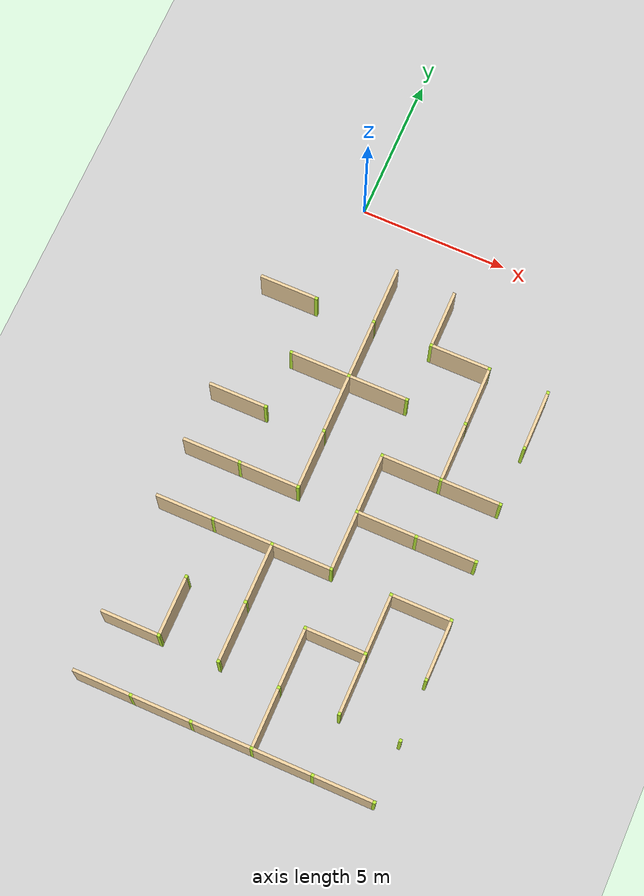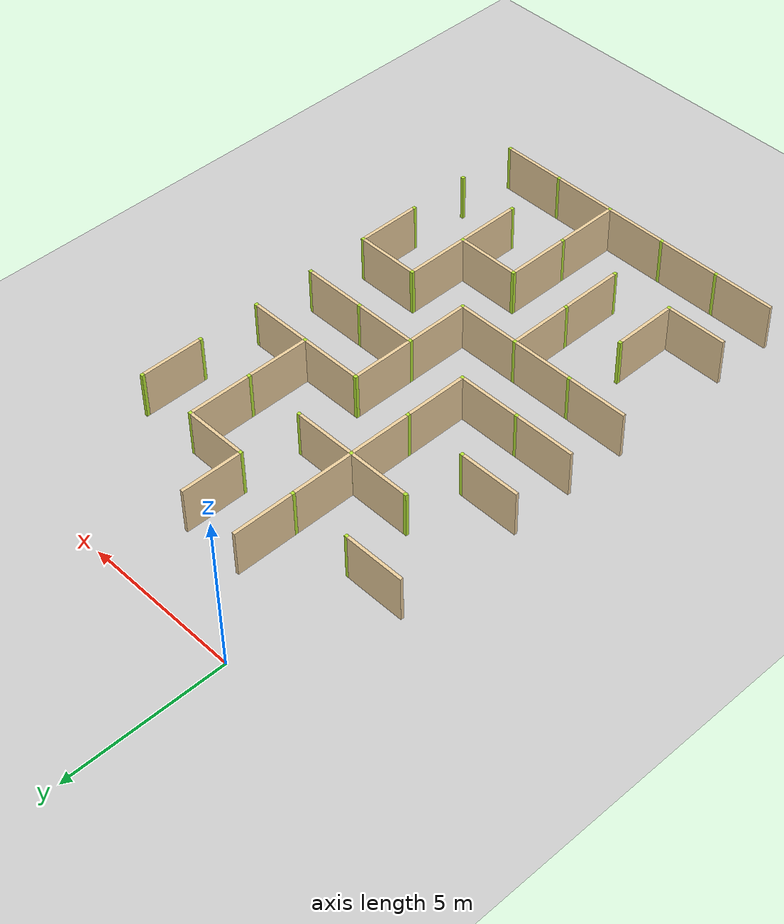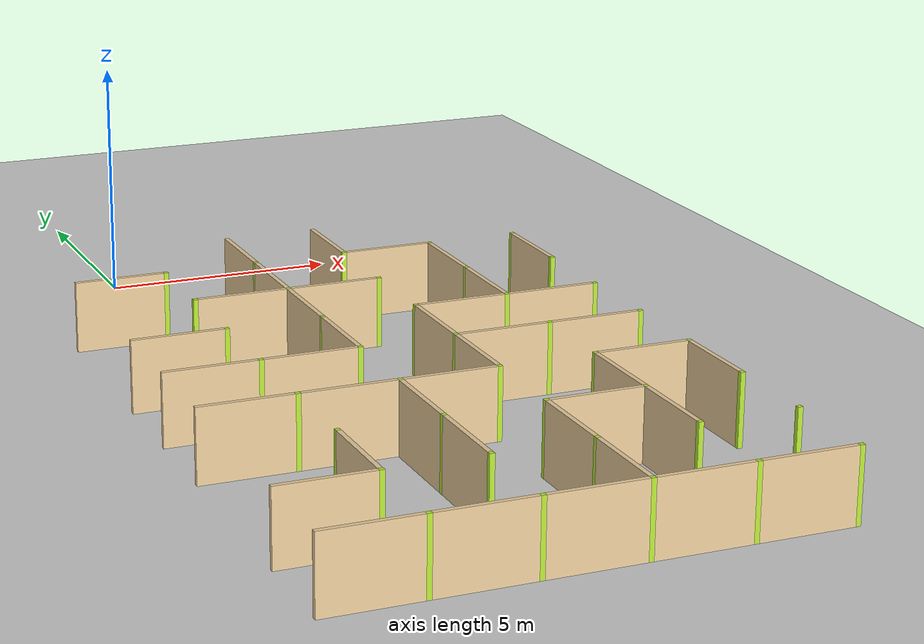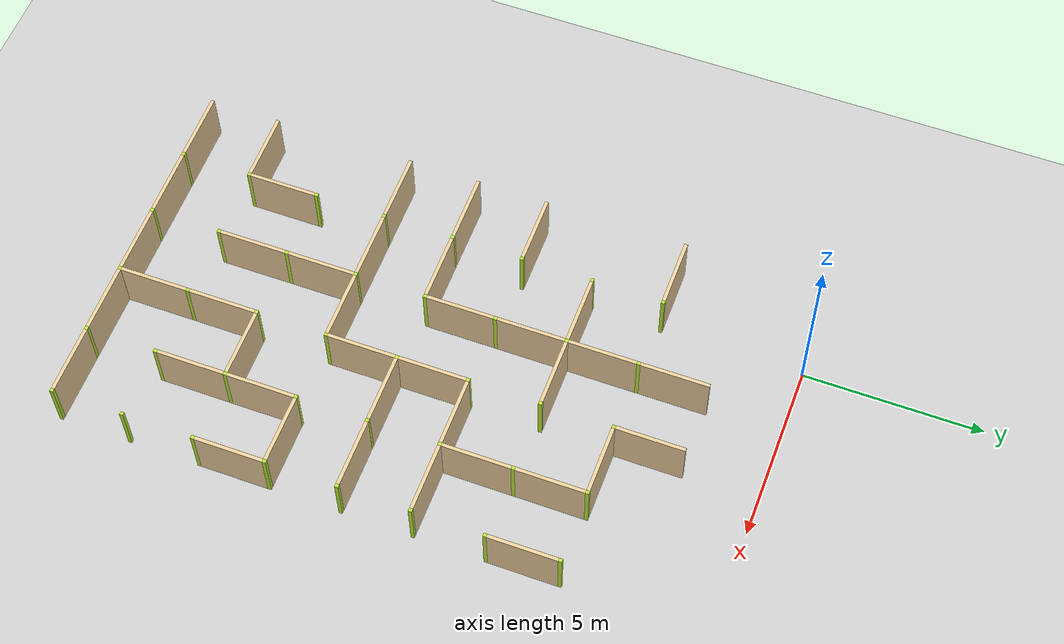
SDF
<sdf version="1.4">
 <world name="maze_world">
  <model name="ground">
   <static>true</static>
   <link name="ground_link">
    <collision name="collision1"><geometry><plane><normal>0 0 1</normal></plane></geometry></collision>
    <visual name="visual1"><geometry><plane><normal>0 0 1</normal><size>100 100</size></plane></geometry></visual>
   </link>
  </model>
  <model name="Untitled">
   <link name="Wall_11_11_v">
    <collision name="Wall_0_Collision">
     <geometry><box><size>1.9 0.1 1.5</size></box></geometry>
     <pose>0 0 0.75 0 -0 0</pose>
    </collision>
    <visual name="Wall_0_Visual">
     <pose>0 0 0.75 0 -0 0</pose>
     <geometry><box><size>1.9 0.1 1.5</size></box></geometry>
     <material>
      <script><uri>file://media/materials/scripts/gazebo.material</uri><name>Gazebo/Grey</name></script>
      <ambient>0.921569 0.807843 0.615686 1</ambient>
     </material>
     <meta><layer>0</layer></meta>
    </visual>
    <pose>2 -3.0 0 0 -0 1.5708</pose>
   </link>
   <link name="Wall_12_11_v">
    <collision name="Wall_0_Collision">
     <geometry><box><size>1.9 0.1 1.5</size></box></geometry>
     <pose>0 0 0.75 0 -0 0</pose>
    </collision>
    <visual name="Wall_0_Visual">
     <pose>0 0 0.75 0 -0 0</pose>
     <geometry><box><size>1.9 0.1 1.5</size></box></geometry>
     <material>
      <script><uri>file://media/materials/scripts/gazebo.material</uri><name>Gazebo/Grey</name></script>
      <ambient>0.921569 0.807843 0.615686 1</ambient>
     </material>
     <meta><layer>0</layer></meta>
    </visual>
    <pose>4 -3.0 0 0 -0 1.5708</pose>
   </link>
   <link name="Wall_9_12_h">
    <collision name="Wall_0_Collision">
     <geometry><box><size>1.9 0.1 1.5</size></box></geometry>
     <pose>0 0 0.75 0 -0 0</pose>
    </collision>
    <visual name="Wall_0_Visual">
     <pose>0 0 0.75 0 -0 0</pose>
     <geometry><box><size>1.9 0.1 1.5</size></box></geometry>
     <material>
      <script><uri>file://media/materials/scripts/gazebo.material</uri><name>Gazebo/Grey</name></script>
      <ambient>0.921569 0.807843 0.615686 1</ambient>
     </material>
     <meta><layer>0</layer></meta>
    </visual>
    <pose>-1.0 -4 0 0 -0 0</pose>
   </link>
   <link name="Joint_0_-4">
    <collision name="Wall_2_Collision">
     <geometry><box><size>0.1 0.1 1.5</size></box></geometry>
     <pose>0 0 0.75 0 -0 0</pose>
    </collision>
    <visual name="Wall_2_Visual">
     <pose>0 0 0.75 0 -0 0</pose>
     <geometry><box><size>0.1 0.1 1.5</size></box></geometry>
     <material>
      <script><uri>file://media/materials/scripts/gazebo.material</uri><name>Gazebo/Grey</name></script>
      <ambient>0.721569 0.907843 0.215686 1</ambient>
     </material>
     <meta><layer>0</layer></meta>
    </visual>
    <pose>0 -4 0 0 -0 0</pose>
   </link>
   <link name="Wall_11_12_v">
    <collision name="Wall_0_Collision">
     <geometry><box><size>1.9 0.1 1.5</size></box></geometry>
     <pose>0 0 0.75 0 -0 0</pose>
    </collision>
    <visual name="Wall_0_Visual">
     <pose>0 0 0.75 0 -0 0</pose>
     <geometry><box><size>1.9 0.1 1.5</size></box></geometry>
     <material>
      <script><uri>file://media/materials/scripts/gazebo.material</uri><name>Gazebo/Grey</name></script>
      <ambient>0.921569 0.807843 0.615686 1</ambient>
     </material>
     <meta><layer>0</layer></meta>
    </visual>
    <pose>2 -5.0 0 0 -0 1.5708</pose>
   </link>
   <link name="Joint_2_-4">
    <collision name="Wall_2_Collision">
     <geometry><box><size>0.1 0.1 1.5</size></box></geometry>
     <pose>0 0 0.75 0 -0 0</pose>
    </collision>
    <visual name="Wall_2_Visual">
     <pose>0 0 0.75 0 -0 0</pose>
     <geometry><box><size>0.1 0.1 1.5</size></box></geometry>
     <material>
      <script><uri>file://media/materials/scripts/gazebo.material</uri><name>Gazebo/Grey</name></script>
      <ambient>0.721569 0.907843 0.215686 1</ambient>
     </material>
     <meta><layer>0</layer></meta>
    </visual>
    <pose>2 -4 0 0 -0 0</pose>
   </link>
   <link name="Wall_12_12_h">
    <collision name="Wall_0_Collision">
     <geometry><box><size>1.9 0.1 1.5</size></box></geometry>
     <pose>0 0 0.75 0 -0 0</pose>
    </collision>
    <visual name="Wall_0_Visual">
     <pose>0 0 0.75 0 -0 0</pose>
     <geometry><box><size>1.9 0.1 1.5</size></box></geometry>
     <material>
      <script><uri>file://media/materials/scripts/gazebo.material</uri><name>Gazebo/Grey</name></script>
      <ambient>0.921569 0.807843 0.615686 1</ambient>
     </material>
     <meta><layer>0</layer></meta>
    </visual>
    <pose>5.0 -4 0 0 -0 0</pose>
   </link>
   <link name="Joint_4_-4">
    <collision name="Wall_2_Collision">
     <geometry><box><size>0.1 0.1 1.5</size></box></geometry>
     <pose>0 0 0.75 0 -0 0</pose>
    </collision>
    <visual name="Wall_2_Visual">
     <pose>0 0 0.75 0 -0 0</pose>
     <geometry><box><size>0.1 0.1 1.5</size></box></geometry>
     <material>
      <script><uri>file://media/materials/scripts/gazebo.material</uri><name>Gazebo/Grey</name></script>
      <ambient>0.721569 0.907843 0.215686 1</ambient>
     </material>
     <meta><layer>0</layer></meta>
    </visual>
    <pose>4 -4 0 0 -0 0</pose>
   </link>
   <link name="Wall_13_12_v">
    <collision name="Wall_0_Collision">
     <geometry><box><size>1.9 0.1 1.5</size></box></geometry>
     <pose>0 0 0.75 0 -0 0</pose>
    </collision>
    <visual name="Wall_0_Visual">
     <pose>0 0 0.75 0 -0 0</pose>
     <geometry><box><size>1.9 0.1 1.5</size></box></geometry>
     <material>
      <script><uri>file://media/materials/scripts/gazebo.material</uri><name>Gazebo/Grey</name></script>
      <ambient>0.921569 0.807843 0.615686 1</ambient>
     </material>
     <meta><layer>0</layer></meta>
    </visual>
    <pose>6 -5.0 0 0 -0 1.5708</pose>
   </link>
   <link name="Joint_6_-4">
    <collision name="Wall_2_Collision">
     <geometry><box><size>0.1 0.1 1.5</size></box></geometry>
     <pose>0 0 0.75 0 -0 0</pose>
    </collision>
    <visual name="Wall_2_Visual">
     <pose>0 0 0.75 0 -0 0</pose>
     <geometry><box><size>0.1 0.1 1.5</size></box></geometry>
     <material>
      <script><uri>file://media/materials/scripts/gazebo.material</uri><name>Gazebo/Grey</name></script>
      <ambient>0.721569 0.907843 0.215686 1</ambient>
     </material>
     <meta><layer>0</layer></meta>
    </visual>
    <pose>6 -4 0 0 -0 0</pose>
   </link>
   <link name="Wall_14_12_v">
    <collision name="Wall_0_Collision">
     <geometry><box><size>1.9 0.1 1.5</size></box></geometry>
     <pose>0 0 0.75 0 -0 0</pose>
    </collision>
    <visual name="Wall_0_Visual">
     <pose>0 0 0.75 0 -0 0</pose>
     <geometry><box><size>1.9 0.1 1.5</size></box></geometry>
     <material>
      <script><uri>file://media/materials/scripts/gazebo.material</uri><name>Gazebo/Grey</name></script>
      <ambient>0.921569 0.807843 0.615686 1</ambient>
     </material>
     <meta><layer>0</layer></meta>
    </visual>
    <pose>8 -5.0 0 0 -0 1.5708</pose>
   </link>
   <link name="Joint_8_-4">
    <collision name="Wall_2_Collision">
     <geometry><box><size>0.1 0.1 1.5</size></box></geometry>
     <pose>0 0 0.75 0 -0 0</pose>
    </collision>
    <visual name="Wall_2_Visual">
     <pose>0 0 0.75 0 -0 0</pose>
     <geometry><box><size>0.1 0.1 1.5</size></box></geometry>
     <material>
      <script><uri>file://media/materials/scripts/gazebo.material</uri><name>Gazebo/Grey</name></script>
      <ambient>0.721569 0.907843 0.215686 1</ambient>
     </material>
     <meta><layer>0</layer></meta>
    </visual>
    <pose>8 -4 0 0 -0 0</pose>
   </link>
   <link name="Wall_10_13_h">
    <collision name="Wall_0_Collision">
     <geometry><box><size>1.9 0.1 1.5</size></box></geometry>
     <pose>0 0 0.75 0 -0 0</pose>
    </collision>
    <visual name="Wall_0_Visual">
     <pose>0 0 0.75 0 -0 0</pose>
     <geometry><box><size>1.9 0.1 1.5</size></box></geometry>
     <material>
      <script><uri>file://media/materials/scripts/gazebo.material</uri><name>Gazebo/Grey</name></script>
      <ambient>0.921569 0.807843 0.615686 1</ambient>
     </material>
     <meta><layer>0</layer></meta>
    </visual>
    <pose>1.0 -6 0 0 -0 0</pose>
   </link>
   <link name="Joint_0_-6">
    <collision name="Wall_2_Collision">
     <geometry><box><size>0.1 0.1 1.5</size></box></geometry>
     <pose>0 0 0.75 0 -0 0</pose>
    </collision>
    <visual name="Wall_2_Visual">
     <pose>0 0 0.75 0 -0 0</pose>
     <geometry><box><size>0.1 0.1 1.5</size></box></geometry>
     <material>
      <script><uri>file://media/materials/scripts/gazebo.material</uri><name>Gazebo/Grey</name></script>
      <ambient>0.721569 0.907843 0.215686 1</ambient>
     </material>
     <meta><layer>0</layer></meta>
    </visual>
    <pose>0 -6 0 0 -0 0</pose>
   </link>
   <link name="Wall_11_13_h">
    <collision name="Wall_0_Collision">
     <geometry><box><size>1.9 0.1 1.5</size></box></geometry>
     <pose>0 0 0.75 0 -0 0</pose>
    </collision>
    <visual name="Wall_0_Visual">
     <pose>0 0 0.75 0 -0 0</pose>
     <geometry><box><size>1.9 0.1 1.5</size></box></geometry>
     <material>
      <script><uri>file://media/materials/scripts/gazebo.material</uri><name>Gazebo/Grey</name></script>
      <ambient>0.921569 0.807843 0.615686 1</ambient>
     </material>
     <meta><layer>0</layer></meta>
    </visual>
    <pose>3.0 -6 0 0 -0 0</pose>
   </link>
   <link name="Wall_11_13_v">
    <collision name="Wall_0_Collision">
     <geometry><box><size>1.9 0.1 1.5</size></box></geometry>
     <pose>0 0 0.75 0 -0 0</pose>
    </collision>
    <visual name="Wall_0_Visual">
     <pose>0 0 0.75 0 -0 0</pose>
     <geometry><box><size>1.9 0.1 1.5</size></box></geometry>
     <material>
      <script><uri>file://media/materials/scripts/gazebo.material</uri><name>Gazebo/Grey</name></script>
      <ambient>0.921569 0.807843 0.615686 1</ambient>
     </material>
     <meta><layer>0</layer></meta>
    </visual>
    <pose>2 -7.0 0 0 -0 1.5708</pose>
   </link>
   <link name="Joint_2_-6">
    <collision name="Wall_2_Collision">
     <geometry><box><size>0.1 0.1 1.5</size></box></geometry>
     <pose>0 0 0.75 0 -0 0</pose>
    </collision>
    <visual name="Wall_2_Visual">
     <pose>0 0 0.75 0 -0 0</pose>
     <geometry><box><size>0.1 0.1 1.5</size></box></geometry>
     <material>
      <script><uri>file://media/materials/scripts/gazebo.material</uri><name>Gazebo/Grey</name></script>
      <ambient>0.721569 0.907843 0.215686 1</ambient>
     </material>
     <meta><layer>0</layer></meta>
    </visual>
    <pose>2 -6 0 0 -0 0</pose>
   </link>
   <link name="Joint_4_-6">
    <collision name="Wall_2_Collision">
     <geometry><box><size>0.1 0.1 1.5</size></box></geometry>
     <pose>0 0 0.75 0 -0 0</pose>
    </collision>
    <visual name="Wall_2_Visual">
     <pose>0 0 0.75 0 -0 0</pose>
     <geometry><box><size>0.1 0.1 1.5</size></box></geometry>
     <material>
      <script><uri>file://media/materials/scripts/gazebo.material</uri><name>Gazebo/Grey</name></script>
      <ambient>0.721569 0.907843 0.215686 1</ambient>
     </material>
     <meta><layer>0</layer></meta>
    </visual>
    <pose>4 -6 0 0 -0 0</pose>
   </link>
   <link name="Wall_13_13_v">
    <collision name="Wall_0_Collision">
     <geometry><box><size>1.9 0.1 1.5</size></box></geometry>
     <pose>0 0 0.75 0 -0 0</pose>
    </collision>
    <visual name="Wall_0_Visual">
     <pose>0 0 0.75 0 -0 0</pose>
     <geometry><box><size>1.9 0.1 1.5</size></box></geometry>
     <material>
      <script><uri>file://media/materials/scripts/gazebo.material</uri><name>Gazebo/Grey</name></script>
      <ambient>0.921569 0.807843 0.615686 1</ambient>
     </material>
     <meta><layer>0</layer></meta>
    </visual>
    <pose>6 -7.0 0 0 -0 1.5708</pose>
   </link>
   <link name="Joint_6_-6">
    <collision name="Wall_2_Collision">
     <geometry><box><size>0.1 0.1 1.5</size></box></geometry>
     <pose>0 0 0.75 0 -0 0</pose>
    </collision>
    <visual name="Wall_2_Visual">
     <pose>0 0 0.75 0 -0 0</pose>
     <geometry><box><size>0.1 0.1 1.5</size></box></geometry>
     <material>
      <script><uri>file://media/materials/scripts/gazebo.material</uri><name>Gazebo/Grey</name></script>
      <ambient>0.721569 0.907843 0.215686 1</ambient>
     </material>
     <meta><layer>0</layer></meta>
    </visual>
    <pose>6 -6 0 0 -0 0</pose>
   </link>
   <link name="Joint_8_-6">
    <collision name="Wall_2_Collision">
     <geometry><box><size>0.1 0.1 1.5</size></box></geometry>
     <pose>0 0 0.75 0 -0 0</pose>
    </collision>
    <visual name="Wall_2_Visual">
     <pose>0 0 0.75 0 -0 0</pose>
     <geometry><box><size>0.1 0.1 1.5</size></box></geometry>
     <material>
      <script><uri>file://media/materials/scripts/gazebo.material</uri><name>Gazebo/Grey</name></script>
      <ambient>0.721569 0.907843 0.215686 1</ambient>
     </material>
     <meta><layer>0</layer></meta>
    </visual>
    <pose>8 -6 0 0 -0 0</pose>
   </link>
   <link name="Wall_9_14_h">
    <collision name="Wall_0_Collision">
     <geometry><box><size>1.9 0.1 1.5</size></box></geometry>
     <pose>0 0 0.75 0 -0 0</pose>
    </collision>
    <visual name="Wall_0_Visual">
     <pose>0 0 0.75 0 -0 0</pose>
     <geometry><box><size>1.9 0.1 1.5</size></box></geometry>
     <material>
      <script><uri>file://media/materials/scripts/gazebo.material</uri><name>Gazebo/Grey</name></script>
      <ambient>0.921569 0.807843 0.615686 1</ambient>
     </material>
     <meta><layer>0</layer></meta>
    </visual>
    <pose>-1.0 -8 0 0 -0 0</pose>
   </link>
   <link name="Joint_0_-8">
    <collision name="Wall_2_Collision">
     <geometry><box><size>0.1 0.1 1.5</size></box></geometry>
     <pose>0 0 0.75 0 -0 0</pose>
    </collision>
    <visual name="Wall_2_Visual">
     <pose>0 0 0.75 0 -0 0</pose>
     <geometry><box><size>0.1 0.1 1.5</size></box></geometry>
     <material>
      <script><uri>file://media/materials/scripts/gazebo.material</uri><name>Gazebo/Grey</name></script>
      <ambient>0.721569 0.907843 0.215686 1</ambient>
     </material>
     <meta><layer>0</layer></meta>
    </visual>
    <pose>0 -8 0 0 -0 0</pose>
   </link>
   <link name="Wall_11_14_v">
    <collision name="Wall_0_Collision">
     <geometry><box><size>1.9 0.1 1.5</size></box></geometry>
     <pose>0 0 0.75 0 -0 0</pose>
    </collision>
    <visual name="Wall_0_Visual">
     <pose>0 0 0.75 0 -0 0</pose>
     <geometry><box><size>1.9 0.1 1.5</size></box></geometry>
     <material>
      <script><uri>file://media/materials/scripts/gazebo.material</uri><name>Gazebo/Grey</name></script>
      <ambient>0.921569 0.807843 0.615686 1</ambient>
     </material>
     <meta><layer>0</layer></meta>
    </visual>
    <pose>2 -9.0 0 0 -0 1.5708</pose>
   </link>
   <link name="Joint_2_-8">
    <collision name="Wall_2_Collision">
     <geometry><box><size>0.1 0.1 1.5</size></box></geometry>
     <pose>0 0 0.75 0 -0 0</pose>
    </collision>
    <visual name="Wall_2_Visual">
     <pose>0 0 0.75 0 -0 0</pose>
     <geometry><box><size>0.1 0.1 1.5</size></box></geometry>
     <material>
      <script><uri>file://media/materials/scripts/gazebo.material</uri><name>Gazebo/Grey</name></script>
      <ambient>0.721569 0.907843 0.215686 1</ambient>
     </material>
     <meta><layer>0</layer></meta>
    </visual>
    <pose>2 -8 0 0 -0 0</pose>
   </link>
   <link name="Wall_12_14_h">
    <collision name="Wall_0_Collision">
     <geometry><box><size>1.9 0.1 1.5</size></box></geometry>
     <pose>0 0 0.75 0 -0 0</pose>
    </collision>
    <visual name="Wall_0_Visual">
     <pose>0 0 0.75 0 -0 0</pose>
     <geometry><box><size>1.9 0.1 1.5</size></box></geometry>
     <material>
      <script><uri>file://media/materials/scripts/gazebo.material</uri><name>Gazebo/Grey</name></script>
      <ambient>0.921569 0.807843 0.615686 1</ambient>
     </material>
     <meta><layer>0</layer></meta>
    </visual>
    <pose>5.0 -8 0 0 -0 0</pose>
   </link>
   <link name="Wall_12_14_v">
    <collision name="Wall_0_Collision">
     <geometry><box><size>1.9 0.1 1.5</size></box></geometry>
     <pose>0 0 0.75 0 -0 0</pose>
    </collision>
    <visual name="Wall_0_Visual">
     <pose>0 0 0.75 0 -0 0</pose>
     <geometry><box><size>1.9 0.1 1.5</size></box></geometry>
     <material>
      <script><uri>file://media/materials/scripts/gazebo.material</uri><name>Gazebo/Grey</name></script>
      <ambient>0.921569 0.807843 0.615686 1</ambient>
     </material>
     <meta><layer>0</layer></meta>
    </visual>
    <pose>4 -9.0 0 0 -0 1.5708</pose>
   </link>
   <link name="Joint_4_-8">
    <collision name="Wall_2_Collision">
     <geometry><box><size>0.1 0.1 1.5</size></box></geometry>
     <pose>0 0 0.75 0 -0 0</pose>
    </collision>
    <visual name="Wall_2_Visual">
     <pose>0 0 0.75 0 -0 0</pose>
     <geometry><box><size>0.1 0.1 1.5</size></box></geometry>
     <material>
      <script><uri>file://media/materials/scripts/gazebo.material</uri><name>Gazebo/Grey</name></script>
      <ambient>0.721569 0.907843 0.215686 1</ambient>
     </material>
     <meta><layer>0</layer></meta>
    </visual>
    <pose>4 -8 0 0 -0 0</pose>
   </link>
   <link name="Wall_13_14_h">
    <collision name="Wall_0_Collision">
     <geometry><box><size>1.9 0.1 1.5</size></box></geometry>
     <pose>0 0 0.75 0 -0 0</pose>
    </collision>
    <visual name="Wall_0_Visual">
     <pose>0 0 0.75 0 -0 0</pose>
     <geometry><box><size>1.9 0.1 1.5</size></box></geometry>
     <material>
      <script><uri>file://media/materials/scripts/gazebo.material</uri><name>Gazebo/Grey</name></script>
      <ambient>0.921569 0.807843 0.615686 1</ambient>
     </material>
     <meta><layer>0</layer></meta>
    </visual>
    <pose>7.0 -8 0 0 -0 0</pose>
   </link>
   <link name="Joint_6_-8">
    <collision name="Wall_2_Collision">
     <geometry><box><size>0.1 0.1 1.5</size></box></geometry>
     <pose>0 0 0.75 0 -0 0</pose>
    </collision>
    <visual name="Wall_2_Visual">
     <pose>0 0 0.75 0 -0 0</pose>
     <geometry><box><size>0.1 0.1 1.5</size></box></geometry>
     <material>
      <script><uri>file://media/materials/scripts/gazebo.material</uri><name>Gazebo/Grey</name></script>
      <ambient>0.721569 0.907843 0.215686 1</ambient>
     </material>
     <meta><layer>0</layer></meta>
    </visual>
    <pose>6 -8 0 0 -0 0</pose>
   </link>
   <link name="Joint_8_-8">
    <collision name="Wall_2_Collision">
     <geometry><box><size>0.1 0.1 1.5</size></box></geometry>
     <pose>0 0 0.75 0 -0 0</pose>
    </collision>
    <visual name="Wall_2_Visual">
     <pose>0 0 0.75 0 -0 0</pose>
     <geometry><box><size>0.1 0.1 1.5</size></box></geometry>
     <material>
      <script><uri>file://media/materials/scripts/gazebo.material</uri><name>Gazebo/Grey</name></script>
      <ambient>0.721569 0.907843 0.215686 1</ambient>
     </material>
     <meta><layer>0</layer></meta>
    </visual>
    <pose>8 -8 0 0 -0 0</pose>
   </link>
   <link name="Wall_9_15_h">
    <collision name="Wall_0_Collision">
     <geometry><box><size>1.9 0.1 1.5</size></box></geometry>
     <pose>0 0 0.75 0 -0 0</pose>
    </collision>
    <visual name="Wall_0_Visual">
     <pose>0 0 0.75 0 -0 0</pose>
     <geometry><box><size>1.9 0.1 1.5</size></box></geometry>
     <material>
      <script><uri>file://media/materials/scripts/gazebo.material</uri><name>Gazebo/Grey</name></script>
      <ambient>0.921569 0.807843 0.615686 1</ambient>
     </material>
     <meta><layer>0</layer></meta>
    </visual>
    <pose>-1.0 -10 0 0 -0 0</pose>
   </link>
   <link name="Wall_10_15_h">
    <collision name="Wall_0_Collision">
     <geometry><box><size>1.9 0.1 1.5</size></box></geometry>
     <pose>0 0 0.75 0 -0 0</pose>
    </collision>
    <visual name="Wall_0_Visual">
     <pose>0 0 0.75 0 -0 0</pose>
     <geometry><box><size>1.9 0.1 1.5</size></box></geometry>
     <material>
      <script><uri>file://media/materials/scripts/gazebo.material</uri><name>Gazebo/Grey</name></script>
      <ambient>0.921569 0.807843 0.615686 1</ambient>
     </material>
     <meta><layer>0</layer></meta>
    </visual>
    <pose>1.0 -10 0 0 -0 0</pose>
   </link>
   <link name="Joint_0_-10">
    <collision name="Wall_2_Collision">
     <geometry><box><size>0.1 0.1 1.5</size></box></geometry>
     <pose>0 0 0.75 0 -0 0</pose>
    </collision>
    <visual name="Wall_2_Visual">
     <pose>0 0 0.75 0 -0 0</pose>
     <geometry><box><size>0.1 0.1 1.5</size></box></geometry>
     <material>
      <script><uri>file://media/materials/scripts/gazebo.material</uri><name>Gazebo/Grey</name></script>
      <ambient>0.721569 0.907843 0.215686 1</ambient>
     </material>
     <meta><layer>0</layer></meta>
    </visual>
    <pose>0 -10 0 0 -0 0</pose>
   </link>
   <link name="Joint_2_-10">
    <collision name="Wall_2_Collision">
     <geometry><box><size>0.1 0.1 1.5</size></box></geometry>
     <pose>0 0 0.75 0 -0 0</pose>
    </collision>
    <visual name="Wall_2_Visual">
     <pose>0 0 0.75 0 -0 0</pose>
     <geometry><box><size>0.1 0.1 1.5</size></box></geometry>
     <material>
      <script><uri>file://media/materials/scripts/gazebo.material</uri><name>Gazebo/Grey</name></script>
      <ambient>0.721569 0.907843 0.215686 1</ambient>
     </material>
     <meta><layer>0</layer></meta>
    </visual>
    <pose>2 -10 0 0 -0 0</pose>
   </link>
   <link name="Wall_12_15_h">
    <collision name="Wall_0_Collision">
     <geometry><box><size>1.9 0.1 1.5</size></box></geometry>
     <pose>0 0 0.75 0 -0 0</pose>
    </collision>
    <visual name="Wall_0_Visual">
     <pose>0 0 0.75 0 -0 0</pose>
     <geometry><box><size>1.9 0.1 1.5</size></box></geometry>
     <material>
      <script><uri>file://media/materials/scripts/gazebo.material</uri><name>Gazebo/Grey</name></script>
      <ambient>0.921569 0.807843 0.615686 1</ambient>
     </material>
     <meta><layer>0</layer></meta>
    </visual>
    <pose>5.0 -10 0 0 -0 0</pose>
   </link>
   <link name="Wall_12_15_v">
    <collision name="Wall_0_Collision">
     <geometry><box><size>1.9 0.1 1.5</size></box></geometry>
     <pose>0 0 0.75 0 -0 0</pose>
    </collision>
    <visual name="Wall_0_Visual">
     <pose>0 0 0.75 0 -0 0</pose>
     <geometry><box><size>1.9 0.1 1.5</size></box></geometry>
     <material>
      <script><uri>file://media/materials/scripts/gazebo.material</uri><name>Gazebo/Grey</name></script>
      <ambient>0.921569 0.807843 0.615686 1</ambient>
     </material>
     <meta><layer>0</layer></meta>
    </visual>
    <pose>4 -11.0 0 0 -0 1.5708</pose>
   </link>
   <link name="Joint_4_-10">
    <collision name="Wall_2_Collision">
     <geometry><box><size>0.1 0.1 1.5</size></box></geometry>
     <pose>0 0 0.75 0 -0 0</pose>
    </collision>
    <visual name="Wall_2_Visual">
     <pose>0 0 0.75 0 -0 0</pose>
     <geometry><box><size>0.1 0.1 1.5</size></box></geometry>
     <material>
      <script><uri>file://media/materials/scripts/gazebo.material</uri><name>Gazebo/Grey</name></script>
      <ambient>0.721569 0.907843 0.215686 1</ambient>
     </material>
     <meta><layer>0</layer></meta>
    </visual>
    <pose>4 -10 0 0 -0 0</pose>
   </link>
   <link name="Wall_13_15_h">
    <collision name="Wall_0_Collision">
     <geometry><box><size>1.9 0.1 1.5</size></box></geometry>
     <pose>0 0 0.75 0 -0 0</pose>
    </collision>
    <visual name="Wall_0_Visual">
     <pose>0 0 0.75 0 -0 0</pose>
     <geometry><box><size>1.9 0.1 1.5</size></box></geometry>
     <material>
      <script><uri>file://media/materials/scripts/gazebo.material</uri><name>Gazebo/Grey</name></script>
      <ambient>0.921569 0.807843 0.615686 1</ambient>
     </material>
     <meta><layer>0</layer></meta>
    </visual>
    <pose>7.0 -10 0 0 -0 0</pose>
   </link>
   <link name="Joint_6_-10">
    <collision name="Wall_2_Collision">
     <geometry><box><size>0.1 0.1 1.5</size></box></geometry>
     <pose>0 0 0.75 0 -0 0</pose>
    </collision>
    <visual name="Wall_2_Visual">
     <pose>0 0 0.75 0 -0 0</pose>
     <geometry><box><size>0.1 0.1 1.5</size></box></geometry>
     <material>
      <script><uri>file://media/materials/scripts/gazebo.material</uri><name>Gazebo/Grey</name></script>
      <ambient>0.721569 0.907843 0.215686 1</ambient>
     </material>
     <meta><layer>0</layer></meta>
    </visual>
    <pose>6 -10 0 0 -0 0</pose>
   </link>
   <link name="Joint_8_-10">
    <collision name="Wall_2_Collision">
     <geometry><box><size>0.1 0.1 1.5</size></box></geometry>
     <pose>0 0 0.75 0 -0 0</pose>
    </collision>
    <visual name="Wall_2_Visual">
     <pose>0 0 0.75 0 -0 0</pose>
     <geometry><box><size>0.1 0.1 1.5</size></box></geometry>
     <material>
      <script><uri>file://media/materials/scripts/gazebo.material</uri><name>Gazebo/Grey</name></script>
      <ambient>0.721569 0.907843 0.215686 1</ambient>
     </material>
     <meta><layer>0</layer></meta>
    </visual>
    <pose>8 -10 0 0 -0 0</pose>
   </link>
   <link name="Wall_9_16_h">
    <collision name="Wall_0_Collision">
     <geometry><box><size>1.9 0.1 1.5</size></box></geometry>
     <pose>0 0 0.75 0 -0 0</pose>
    </collision>
    <visual name="Wall_0_Visual">
     <pose>0 0 0.75 0 -0 0</pose>
     <geometry><box><size>1.9 0.1 1.5</size></box></geometry>
     <material>
      <script><uri>file://media/materials/scripts/gazebo.material</uri><name>Gazebo/Grey</name></script>
      <ambient>0.921569 0.807843 0.615686 1</ambient>
     </material>
     <meta><layer>0</layer></meta>
    </visual>
    <pose>-1.0 -12 0 0 -0 0</pose>
   </link>
   <link name="Wall_10_16_h">
    <collision name="Wall_0_Collision">
     <geometry><box><size>1.9 0.1 1.5</size></box></geometry>
     <pose>0 0 0.75 0 -0 0</pose>
    </collision>
    <visual name="Wall_0_Visual">
     <pose>0 0 0.75 0 -0 0</pose>
     <geometry><box><size>1.9 0.1 1.5</size></box></geometry>
     <material>
      <script><uri>file://media/materials/scripts/gazebo.material</uri><name>Gazebo/Grey</name></script>
      <ambient>0.921569 0.807843 0.615686 1</ambient>
     </material>
     <meta><layer>0</layer></meta>
    </visual>
    <pose>1.0 -12 0 0 -0 0</pose>
   </link>
   <link name="Joint_0_-12">
    <collision name="Wall_2_Collision">
     <geometry><box><size>0.1 0.1 1.5</size></box></geometry>
     <pose>0 0 0.75 0 -0 0</pose>
    </collision>
    <visual name="Wall_2_Visual">
     <pose>0 0 0.75 0 -0 0</pose>
     <geometry><box><size>0.1 0.1 1.5</size></box></geometry>
     <material>
      <script><uri>file://media/materials/scripts/gazebo.material</uri><name>Gazebo/Grey</name></script>
      <ambient>0.721569 0.907843 0.215686 1</ambient>
     </material>
     <meta><layer>0</layer></meta>
    </visual>
    <pose>0 -12 0 0 -0 0</pose>
   </link>
   <link name="Wall_11_16_h">
    <collision name="Wall_0_Collision">
     <geometry><box><size>1.9 0.1 1.5</size></box></geometry>
     <pose>0 0 0.75 0 -0 0</pose>
    </collision>
    <visual name="Wall_0_Visual">
     <pose>0 0 0.75 0 -0 0</pose>
     <geometry><box><size>1.9 0.1 1.5</size></box></geometry>
     <material>
      <script><uri>file://media/materials/scripts/gazebo.material</uri><name>Gazebo/Grey</name></script>
      <ambient>0.921569 0.807843 0.615686 1</ambient>
     </material>
     <meta><layer>0</layer></meta>
    </visual>
    <pose>3.0 -12 0 0 -0 0</pose>
   </link>
   <link name="Wall_11_16_v">
    <collision name="Wall_0_Collision">
     <geometry><box><size>1.9 0.1 1.5</size></box></geometry>
     <pose>0 0 0.75 0 -0 0</pose>
    </collision>
    <visual name="Wall_0_Visual">
     <pose>0 0 0.75 0 -0 0</pose>
     <geometry><box><size>1.9 0.1 1.5</size></box></geometry>
     <material>
      <script><uri>file://media/materials/scripts/gazebo.material</uri><name>Gazebo/Grey</name></script>
      <ambient>0.921569 0.807843 0.615686 1</ambient>
     </material>
     <meta><layer>0</layer></meta>
    </visual>
    <pose>2 -13.0 0 0 -0 1.5708</pose>
   </link>
   <link name="Joint_2_-12">
    <collision name="Wall_2_Collision">
     <geometry><box><size>0.1 0.1 1.5</size></box></geometry>
     <pose>0 0 0.75 0 -0 0</pose>
    </collision>
    <visual name="Wall_2_Visual">
     <pose>0 0 0.75 0 -0 0</pose>
     <geometry><box><size>0.1 0.1 1.5</size></box></geometry>
     <material>
      <script><uri>file://media/materials/scripts/gazebo.material</uri><name>Gazebo/Grey</name></script>
      <ambient>0.721569 0.907843 0.215686 1</ambient>
     </material>
     <meta><layer>0</layer></meta>
    </visual>
    <pose>2 -12 0 0 -0 0</pose>
   </link>
   <link name="Joint_4_-12">
    <collision name="Wall_2_Collision">
     <geometry><box><size>0.1 0.1 1.5</size></box></geometry>
     <pose>0 0 0.75 0 -0 0</pose>
    </collision>
    <visual name="Wall_2_Visual">
     <pose>0 0 0.75 0 -0 0</pose>
     <geometry><box><size>0.1 0.1 1.5</size></box></geometry>
     <material>
      <script><uri>file://media/materials/scripts/gazebo.material</uri><name>Gazebo/Grey</name></script>
      <ambient>0.721569 0.907843 0.215686 1</ambient>
     </material>
     <meta><layer>0</layer></meta>
    </visual>
    <pose>4 -12 0 0 -0 0</pose>
   </link>
   <link name="Wall_13_16_h">
    <collision name="Wall_0_Collision">
     <geometry><box><size>1.9 0.1 1.5</size></box></geometry>
     <pose>0 0 0.75 0 -0 0</pose>
    </collision>
    <visual name="Wall_0_Visual">
     <pose>0 0 0.75 0 -0 0</pose>
     <geometry><box><size>1.9 0.1 1.5</size></box></geometry>
     <material>
      <script><uri>file://media/materials/scripts/gazebo.material</uri><name>Gazebo/Grey</name></script>
      <ambient>0.921569 0.807843 0.615686 1</ambient>
     </material>
     <meta><layer>0</layer></meta>
    </visual>
    <pose>7.0 -12 0 0 -0 0</pose>
   </link>
   <link name="Wall_13_16_v">
    <collision name="Wall_0_Collision">
     <geometry><box><size>1.9 0.1 1.5</size></box></geometry>
     <pose>0 0 0.75 0 -0 0</pose>
    </collision>
    <visual name="Wall_0_Visual">
     <pose>0 0 0.75 0 -0 0</pose>
     <geometry><box><size>1.9 0.1 1.5</size></box></geometry>
     <material>
      <script><uri>file://media/materials/scripts/gazebo.material</uri><name>Gazebo/Grey</name></script>
      <ambient>0.921569 0.807843 0.615686 1</ambient>
     </material>
     <meta><layer>0</layer></meta>
    </visual>
    <pose>6 -13.0 0 0 -0 1.5708</pose>
   </link>
   <link name="Joint_6_-12">
    <collision name="Wall_2_Collision">
     <geometry><box><size>0.1 0.1 1.5</size></box></geometry>
     <pose>0 0 0.75 0 -0 0</pose>
    </collision>
    <visual name="Wall_2_Visual">
     <pose>0 0 0.75 0 -0 0</pose>
     <geometry><box><size>0.1 0.1 1.5</size></box></geometry>
     <material>
      <script><uri>file://media/materials/scripts/gazebo.material</uri><name>Gazebo/Grey</name></script>
      <ambient>0.721569 0.907843 0.215686 1</ambient>
     </material>
     <meta><layer>0</layer></meta>
    </visual>
    <pose>6 -12 0 0 -0 0</pose>
   </link>
   <link name="Wall_14_16_v">
    <collision name="Wall_0_Collision">
     <geometry><box><size>1.9 0.1 1.5</size></box></geometry>
     <pose>0 0 0.75 0 -0 0</pose>
    </collision>
    <visual name="Wall_0_Visual">
     <pose>0 0 0.75 0 -0 0</pose>
     <geometry><box><size>1.9 0.1 1.5</size></box></geometry>
     <material>
      <script><uri>file://media/materials/scripts/gazebo.material</uri><name>Gazebo/Grey</name></script>
      <ambient>0.921569 0.807843 0.615686 1</ambient>
     </material>
     <meta><layer>0</layer></meta>
    </visual>
    <pose>8 -13.0 0 0 -0 1.5708</pose>
   </link>
   <link name="Joint_8_-12">
    <collision name="Wall_2_Collision">
     <geometry><box><size>0.1 0.1 1.5</size></box></geometry>
     <pose>0 0 0.75 0 -0 0</pose>
    </collision>
    <visual name="Wall_2_Visual">
     <pose>0 0 0.75 0 -0 0</pose>
     <geometry><box><size>0.1 0.1 1.5</size></box></geometry>
     <material>
      <script><uri>file://media/materials/scripts/gazebo.material</uri><name>Gazebo/Grey</name></script>
      <ambient>0.721569 0.907843 0.215686 1</ambient>
     </material>
     <meta><layer>0</layer></meta>
    </visual>
    <pose>8 -12 0 0 -0 0</pose>
   </link>
   <link name="Wall_10_17_v">
    <collision name="Wall_0_Collision">
     <geometry><box><size>1.9 0.1 1.5</size></box></geometry>
     <pose>0 0 0.75 0 -0 0</pose>
    </collision>
    <visual name="Wall_0_Visual">
     <pose>0 0 0.75 0 -0 0</pose>
     <geometry><box><size>1.9 0.1 1.5</size></box></geometry>
     <material>
      <script><uri>file://media/materials/scripts/gazebo.material</uri><name>Gazebo/Grey</name></script>
      <ambient>0.921569 0.807843 0.615686 1</ambient>
     </material>
     <meta><layer>0</layer></meta>
    </visual>
    <pose>0 -15.0 0 0 -0 1.5708</pose>
   </link>
   <link name="Joint_0_-14">
    <collision name="Wall_2_Collision">
     <geometry><box><size>0.1 0.1 1.5</size></box></geometry>
     <pose>0 0 0.75 0 -0 0</pose>
    </collision>
    <visual name="Wall_2_Visual">
     <pose>0 0 0.75 0 -0 0</pose>
     <geometry><box><size>0.1 0.1 1.5</size></box></geometry>
     <material>
      <script><uri>file://media/materials/scripts/gazebo.material</uri><name>Gazebo/Grey</name></script>
      <ambient>0.721569 0.907843 0.215686 1</ambient>
     </material>
     <meta><layer>0</layer></meta>
    </visual>
    <pose>0 -14 0 0 -0 0</pose>
   </link>
   <link name="Wall_11_17_v">
    <collision name="Wall_0_Collision">
     <geometry><box><size>1.9 0.1 1.5</size></box></geometry>
     <pose>0 0 0.75 0 -0 0</pose>
    </collision>
    <visual name="Wall_0_Visual">
     <pose>0 0 0.75 0 -0 0</pose>
     <geometry><box><size>1.9 0.1 1.5</size></box></geometry>
     <material>
      <script><uri>file://media/materials/scripts/gazebo.material</uri><name>Gazebo/Grey</name></script>
      <ambient>0.921569 0.807843 0.615686 1</ambient>
     </material>
     <meta><layer>0</layer></meta>
    </visual>
    <pose>2 -15.0 0 0 -0 1.5708</pose>
   </link>
   <link name="Joint_2_-14">
    <collision name="Wall_2_Collision">
     <geometry><box><size>0.1 0.1 1.5</size></box></geometry>
     <pose>0 0 0.75 0 -0 0</pose>
    </collision>
    <visual name="Wall_2_Visual">
     <pose>0 0 0.75 0 -0 0</pose>
     <geometry><box><size>0.1 0.1 1.5</size></box></geometry>
     <material>
      <script><uri>file://media/materials/scripts/gazebo.material</uri><name>Gazebo/Grey</name></script>
      <ambient>0.721569 0.907843 0.215686 1</ambient>
     </material>
     <meta><layer>0</layer></meta>
    </visual>
    <pose>2 -14 0 0 -0 0</pose>
   </link>
   <link name="Wall_12_17_h">
    <collision name="Wall_0_Collision">
     <geometry><box><size>1.9 0.1 1.5</size></box></geometry>
     <pose>0 0 0.75 0 -0 0</pose>
    </collision>
    <visual name="Wall_0_Visual">
     <pose>0 0 0.75 0 -0 0</pose>
     <geometry><box><size>1.9 0.1 1.5</size></box></geometry>
     <material>
      <script><uri>file://media/materials/scripts/gazebo.material</uri><name>Gazebo/Grey</name></script>
      <ambient>0.921569 0.807843 0.615686 1</ambient>
     </material>
     <meta><layer>0</layer></meta>
    </visual>
    <pose>5.0 -14 0 0 -0 0</pose>
   </link>
   <link name="Wall_12_17_v">
    <collision name="Wall_0_Collision">
     <geometry><box><size>1.9 0.1 1.5</size></box></geometry>
     <pose>0 0 0.75 0 -0 0</pose>
    </collision>
    <visual name="Wall_0_Visual">
     <pose>0 0 0.75 0 -0 0</pose>
     <geometry><box><size>1.9 0.1 1.5</size></box></geometry>
     <material>
      <script><uri>file://media/materials/scripts/gazebo.material</uri><name>Gazebo/Grey</name></script>
      <ambient>0.921569 0.807843 0.615686 1</ambient>
     </material>
     <meta><layer>0</layer></meta>
    </visual>
    <pose>4 -15.0 0 0 -0 1.5708</pose>
   </link>
   <link name="Joint_4_-14">
    <collision name="Wall_2_Collision">
     <geometry><box><size>0.1 0.1 1.5</size></box></geometry>
     <pose>0 0 0.75 0 -0 0</pose>
    </collision>
    <visual name="Wall_2_Visual">
     <pose>0 0 0.75 0 -0 0</pose>
     <geometry><box><size>0.1 0.1 1.5</size></box></geometry>
     <material>
      <script><uri>file://media/materials/scripts/gazebo.material</uri><name>Gazebo/Grey</name></script>
      <ambient>0.721569 0.907843 0.215686 1</ambient>
     </material>
     <meta><layer>0</layer></meta>
    </visual>
    <pose>4 -14 0 0 -0 0</pose>
   </link>
   <link name="Wall_13_17_v">
    <collision name="Wall_0_Collision">
     <geometry><box><size>1.9 0.1 1.5</size></box></geometry>
     <pose>0 0 0.75 0 -0 0</pose>
    </collision>
    <visual name="Wall_0_Visual">
     <pose>0 0 0.75 0 -0 0</pose>
     <geometry><box><size>1.9 0.1 1.5</size></box></geometry>
     <material>
      <script><uri>file://media/materials/scripts/gazebo.material</uri><name>Gazebo/Grey</name></script>
      <ambient>0.921569 0.807843 0.615686 1</ambient>
     </material>
     <meta><layer>0</layer></meta>
    </visual>
    <pose>6 -15.0 0 0 -0 1.5708</pose>
   </link>
   <link name="Joint_6_-14">
    <collision name="Wall_2_Collision">
     <geometry><box><size>0.1 0.1 1.5</size></box></geometry>
     <pose>0 0 0.75 0 -0 0</pose>
    </collision>
    <visual name="Wall_2_Visual">
     <pose>0 0 0.75 0 -0 0</pose>
     <geometry><box><size>0.1 0.1 1.5</size></box></geometry>
     <material>
      <script><uri>file://media/materials/scripts/gazebo.material</uri><name>Gazebo/Grey</name></script>
      <ambient>0.721569 0.907843 0.215686 1</ambient>
     </material>
     <meta><layer>0</layer></meta>
    </visual>
    <pose>6 -14 0 0 -0 0</pose>
   </link>
   <link name="Joint_8_-14">
    <collision name="Wall_2_Collision">
     <geometry><box><size>0.1 0.1 1.5</size></box></geometry>
     <pose>0 0 0.75 0 -0 0</pose>
    </collision>
    <visual name="Wall_2_Visual">
     <pose>0 0 0.75 0 -0 0</pose>
     <geometry><box><size>0.1 0.1 1.5</size></box></geometry>
     <material>
      <script><uri>file://media/materials/scripts/gazebo.material</uri><name>Gazebo/Grey</name></script>
      <ambient>0.721569 0.907843 0.215686 1</ambient>
     </material>
     <meta><layer>0</layer></meta>
    </visual>
    <pose>8 -14 0 0 -0 0</pose>
   </link>
   <link name="Wall_9_18_h">
    <collision name="Wall_0_Collision">
     <geometry><box><size>1.9 0.1 1.5</size></box></geometry>
     <pose>0 0 0.75 0 -0 0</pose>
    </collision>
    <visual name="Wall_0_Visual">
     <pose>0 0 0.75 0 -0 0</pose>
     <geometry><box><size>1.9 0.1 1.5</size></box></geometry>
     <material>
      <script><uri>file://media/materials/scripts/gazebo.material</uri><name>Gazebo/Grey</name></script>
      <ambient>0.921569 0.807843 0.615686 1</ambient>
     </material>
     <meta><layer>0</layer></meta>
    </visual>
    <pose>-1.0 -16 0 0 -0 0</pose>
   </link>
   <link name="Wall_9_19_h">
    <collision name="Wall_0_Collision">
     <geometry><box><size>1.9 0.1 1.5</size></box></geometry>
     <pose>0 0 0.75 0 -0 0</pose>
    </collision>
    <visual name="Wall_0_Visual">
     <pose>0 0 0.75 0 -0 0</pose>
     <geometry><box><size>1.9 0.1 1.5</size></box></geometry>
     <material>
      <script><uri>file://media/materials/scripts/gazebo.material</uri><name>Gazebo/Grey</name></script>
      <ambient>0.921569 0.807843 0.615686 1</ambient>
     </material>
     <meta><layer>0</layer></meta>
    </visual>
    <pose>-1.0 -18 0 0 -0 0</pose>
   </link>
   <link name="Joint_0_-16">
    <collision name="Wall_2_Collision">
     <geometry><box><size>0.1 0.1 1.5</size></box></geometry>
     <pose>0 0 0.75 0 -0 0</pose>
    </collision>
    <visual name="Wall_2_Visual">
     <pose>0 0 0.75 0 -0 0</pose>
     <geometry><box><size>0.1 0.1 1.5</size></box></geometry>
     <material>
      <script><uri>file://media/materials/scripts/gazebo.material</uri><name>Gazebo/Grey</name></script>
      <ambient>0.721569 0.907843 0.215686 1</ambient>
     </material>
     <meta><layer>0</layer></meta>
    </visual>
    <pose>0 -16 0 0 -0 0</pose>
   </link>
   <link name="Wall_10_19_h">
    <collision name="Wall_0_Collision">
     <geometry><box><size>1.9 0.1 1.5</size></box></geometry>
     <pose>0 0 0.75 0 -0 0</pose>
    </collision>
    <visual name="Wall_0_Visual">
     <pose>0 0 0.75 0 -0 0</pose>
     <geometry><box><size>1.9 0.1 1.5</size></box></geometry>
     <material>
      <script><uri>file://media/materials/scripts/gazebo.material</uri><name>Gazebo/Grey</name></script>
      <ambient>0.921569 0.807843 0.615686 1</ambient>
     </material>
     <meta><layer>0</layer></meta>
    </visual>
    <pose>1.0 -18 0 0 -0 0</pose>
   </link>
   <link name="Joint_0_-18">
    <collision name="Wall_2_Collision">
     <geometry><box><size>0.1 0.1 1.5</size></box></geometry>
     <pose>0 0 0.75 0 -0 0</pose>
    </collision>
    <visual name="Wall_2_Visual">
     <pose>0 0 0.75 0 -0 0</pose>
     <geometry><box><size>0.1 0.1 1.5</size></box></geometry>
     <material>
      <script><uri>file://media/materials/scripts/gazebo.material</uri><name>Gazebo/Grey</name></script>
      <ambient>0.721569 0.907843 0.215686 1</ambient>
     </material>
     <meta><layer>0</layer></meta>
    </visual>
    <pose>0 -18 0 0 -0 0</pose>
   </link>
   <link name="Joint_2_-16">
    <collision name="Wall_2_Collision">
     <geometry><box><size>0.1 0.1 1.5</size></box></geometry>
     <pose>0 0 0.75 0 -0 0</pose>
    </collision>
    <visual name="Wall_2_Visual">
     <pose>0 0 0.75 0 -0 0</pose>
     <geometry><box><size>0.1 0.1 1.5</size></box></geometry>
     <material>
      <script><uri>file://media/materials/scripts/gazebo.material</uri><name>Gazebo/Grey</name></script>
      <ambient>0.721569 0.907843 0.215686 1</ambient>
     </material>
     <meta><layer>0</layer></meta>
    </visual>
    <pose>2 -16 0 0 -0 0</pose>
   </link>
   <link name="Wall_11_19_h">
    <collision name="Wall_0_Collision">
     <geometry><box><size>1.9 0.1 1.5</size></box></geometry>
     <pose>0 0 0.75 0 -0 0</pose>
    </collision>
    <visual name="Wall_0_Visual">
     <pose>0 0 0.75 0 -0 0</pose>
     <geometry><box><size>1.9 0.1 1.5</size></box></geometry>
     <material>
      <script><uri>file://media/materials/scripts/gazebo.material</uri><name>Gazebo/Grey</name></script>
      <ambient>0.921569 0.807843 0.615686 1</ambient>
     </material>
     <meta><layer>0</layer></meta>
    </visual>
    <pose>3.0 -18 0 0 -0 0</pose>
   </link>
   <link name="Joint_2_-18">
    <collision name="Wall_2_Collision">
     <geometry><box><size>0.1 0.1 1.5</size></box></geometry>
     <pose>0 0 0.75 0 -0 0</pose>
    </collision>
    <visual name="Wall_2_Visual">
     <pose>0 0 0.75 0 -0 0</pose>
     <geometry><box><size>0.1 0.1 1.5</size></box></geometry>
     <material>
      <script><uri>file://media/materials/scripts/gazebo.material</uri><name>Gazebo/Grey</name></script>
      <ambient>0.721569 0.907843 0.215686 1</ambient>
     </material>
     <meta><layer>0</layer></meta>
    </visual>
    <pose>2 -18 0 0 -0 0</pose>
   </link>
   <link name="Wall_12_18_v">
    <collision name="Wall_0_Collision">
     <geometry><box><size>1.9 0.1 1.5</size></box></geometry>
     <pose>0 0 0.75 0 -0 0</pose>
    </collision>
    <visual name="Wall_0_Visual">
     <pose>0 0 0.75 0 -0 0</pose>
     <geometry><box><size>1.9 0.1 1.5</size></box></geometry>
     <material>
      <script><uri>file://media/materials/scripts/gazebo.material</uri><name>Gazebo/Grey</name></script>
      <ambient>0.921569 0.807843 0.615686 1</ambient>
     </material>
     <meta><layer>0</layer></meta>
    </visual>
    <pose>4 -17.0 0 0 -0 1.5708</pose>
   </link>
   <link name="Joint_4_-16">
    <collision name="Wall_2_Collision">
     <geometry><box><size>0.1 0.1 1.5</size></box></geometry>
     <pose>0 0 0.75 0 -0 0</pose>
    </collision>
    <visual name="Wall_2_Visual">
     <pose>0 0 0.75 0 -0 0</pose>
     <geometry><box><size>0.1 0.1 1.5</size></box></geometry>
     <material>
      <script><uri>file://media/materials/scripts/gazebo.material</uri><name>Gazebo/Grey</name></script>
      <ambient>0.721569 0.907843 0.215686 1</ambient>
     </material>
     <meta><layer>0</layer></meta>
    </visual>
    <pose>4 -16 0 0 -0 0</pose>
   </link>
   <link name="Wall_12_19_h">
    <collision name="Wall_0_Collision">
     <geometry><box><size>1.9 0.1 1.5</size></box></geometry>
     <pose>0 0 0.75 0 -0 0</pose>
    </collision>
    <visual name="Wall_0_Visual">
     <pose>0 0 0.75 0 -0 0</pose>
     <geometry><box><size>1.9 0.1 1.5</size></box></geometry>
     <material>
      <script><uri>file://media/materials/scripts/gazebo.material</uri><name>Gazebo/Grey</name></script>
      <ambient>0.921569 0.807843 0.615686 1</ambient>
     </material>
     <meta><layer>0</layer></meta>
    </visual>
    <pose>5.0 -18 0 0 -0 0</pose>
   </link>
   <link name="Joint_4_-18">
    <collision name="Wall_2_Collision">
     <geometry><box><size>0.1 0.1 1.5</size></box></geometry>
     <pose>0 0 0.75 0 -0 0</pose>
    </collision>
    <visual name="Wall_2_Visual">
     <pose>0 0 0.75 0 -0 0</pose>
     <geometry><box><size>0.1 0.1 1.5</size></box></geometry>
     <material>
      <script><uri>file://media/materials/scripts/gazebo.material</uri><name>Gazebo/Grey</name></script>
      <ambient>0.721569 0.907843 0.215686 1</ambient>
     </material>
     <meta><layer>0</layer></meta>
    </visual>
    <pose>4 -18 0 0 -0 0</pose>
   </link>
   <link name="Joint_6_-16">
    <collision name="Wall_2_Collision">
     <geometry><box><size>0.1 0.1 1.5</size></box></geometry>
     <pose>0 0 0.75 0 -0 0</pose>
    </collision>
    <visual name="Wall_2_Visual">
     <pose>0 0 0.75 0 -0 0</pose>
     <geometry><box><size>0.1 0.1 1.5</size></box></geometry>
     <material>
      <script><uri>file://media/materials/scripts/gazebo.material</uri><name>Gazebo/Grey</name></script>
      <ambient>0.721569 0.907843 0.215686 1</ambient>
     </material>
     <meta><layer>0</layer></meta>
    </visual>
    <pose>6 -16 0 0 -0 0</pose>
   </link>
   <link name="Wall_13_19_h">
    <collision name="Wall_0_Collision">
     <geometry><box><size>1.9 0.1 1.5</size></box></geometry>
     <pose>0 0 0.75 0 -0 0</pose>
    </collision>
    <visual name="Wall_0_Visual">
     <pose>0 0 0.75 0 -0 0</pose>
     <geometry><box><size>1.9 0.1 1.5</size></box></geometry>
     <material>
      <script><uri>file://media/materials/scripts/gazebo.material</uri><name>Gazebo/Grey</name></script>
      <ambient>0.921569 0.807843 0.615686 1</ambient>
     </material>
     <meta><layer>0</layer></meta>
    </visual>
    <pose>7.0 -18 0 0 -0 0</pose>
   </link>
   <link name="Joint_6_-18">
    <collision name="Wall_2_Collision">
     <geometry><box><size>0.1 0.1 1.5</size></box></geometry>
     <pose>0 0 0.75 0 -0 0</pose>
    </collision>
    <visual name="Wall_2_Visual">
     <pose>0 0 0.75 0 -0 0</pose>
     <geometry><box><size>0.1 0.1 1.5</size></box></geometry>
     <material>
      <script><uri>file://media/materials/scripts/gazebo.material</uri><name>Gazebo/Grey</name></script>
      <ambient>0.721569 0.907843 0.215686 1</ambient>
     </material>
     <meta><layer>0</layer></meta>
    </visual>
    <pose>6 -18 0 0 -0 0</pose>
   </link>
   <link name="Joint_8_-16">
    <collision name="Wall_2_Collision">
     <geometry><box><size>0.1 0.1 1.5</size></box></geometry>
     <pose>0 0 0.75 0 -0 0</pose>
    </collision>
    <visual name="Wall_2_Visual">
     <pose>0 0 0.75 0 -0 0</pose>
     <geometry><box><size>0.1 0.1 1.5</size></box></geometry>
     <material>
      <script><uri>file://media/materials/scripts/gazebo.material</uri><name>Gazebo/Grey</name></script>
      <ambient>0.721569 0.907843 0.215686 1</ambient>
     </material>
     <meta><layer>0</layer></meta>
    </visual>
    <pose>8 -16 0 0 -0 0</pose>
   </link>
   <link name="Joint_8_-18">
    <collision name="Wall_2_Collision">
     <geometry><box><size>0.1 0.1 1.5</size></box></geometry>
     <pose>0 0 0.75 0 -0 0</pose>
    </collision>
    <visual name="Wall_2_Visual">
     <pose>0 0 0.75 0 -0 0</pose>
     <geometry><box><size>0.1 0.1 1.5</size></box></geometry>
     <material>
      <script><uri>file://media/materials/scripts/gazebo.material</uri><name>Gazebo/Grey</name></script>
      <ambient>0.721569 0.907843 0.215686 1</ambient>
     </material>
     <meta><layer>0</layer></meta>
    </visual>
    <pose>8 -18 0 0 -0 0</pose>
   </link>
   <static>1</static>
  </model>
 </world>
</sdf>
